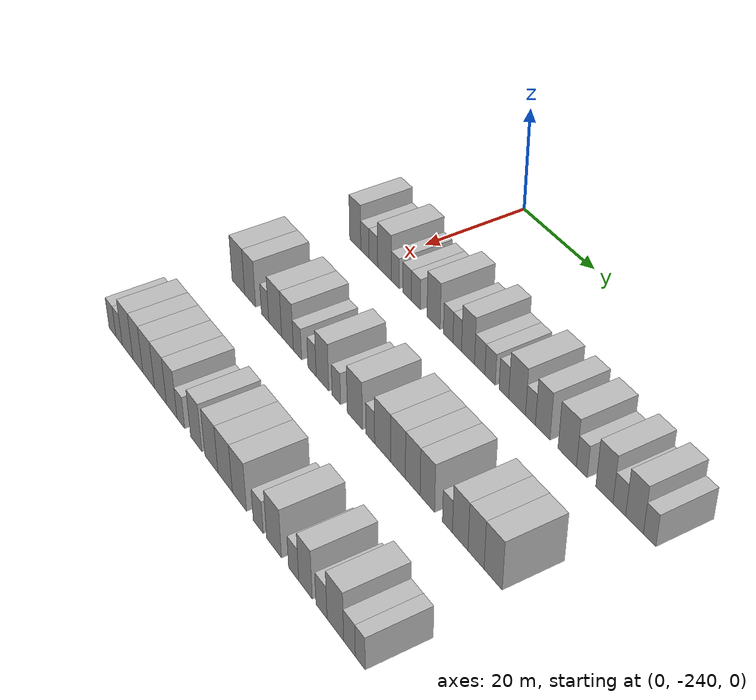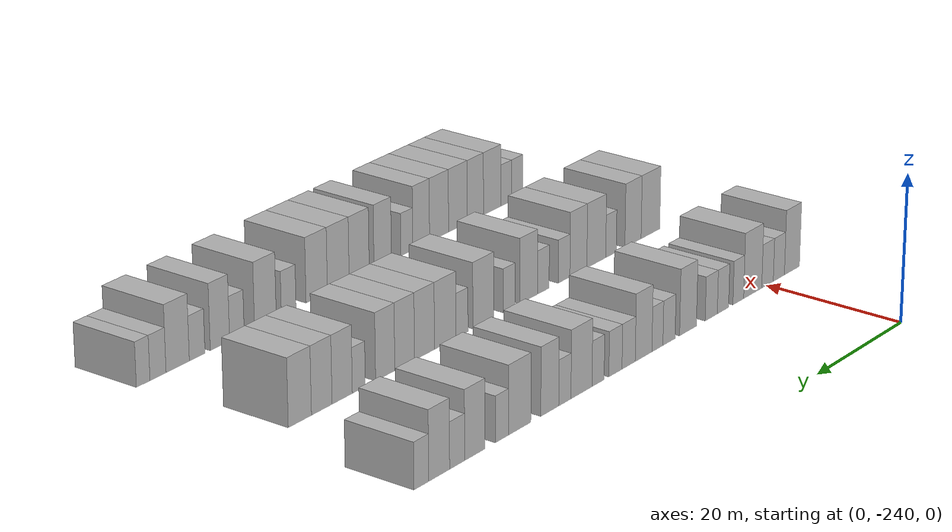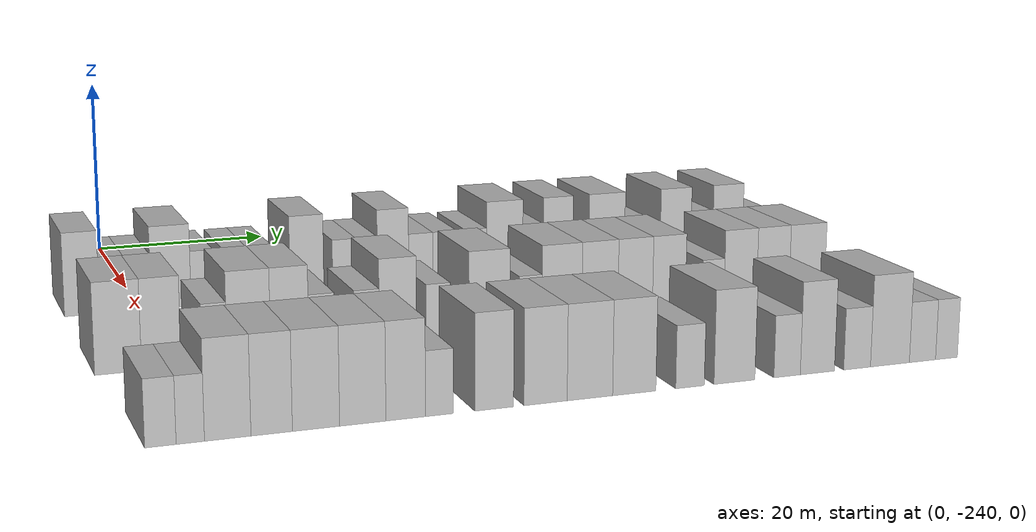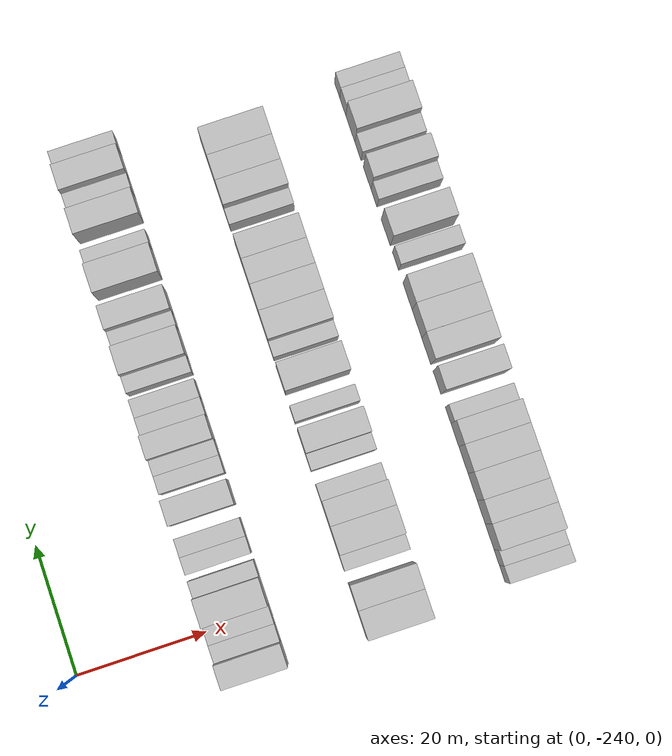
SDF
<sdf version="1.6">
 <world name="default">
  <model name="building_1">
   <static>1</static>
   <pose>25.0000 -246.1664 0 0.000000 0.000000 0.000000</pose>
   <link name="link">
    <pose>0 0 4.50 0 0 0</pose>
    <collision name="collision"><geometry><box><size>10.0000 3.6671 9.0000</size></box></geometry></collision>
    <visual name="visual">
     <cast_shadows>0</cast_shadows>
     <geometry><box><size>10.0000 3.6671 9.0000</size></box></geometry>
     <material>
      <script>
       <uri>model://HANNAS_wall/materials/scripts</uri>
       <uri>model://HANNAS_wall/materials/textures</uri>
       <name>vrc/HANNAS_wall</name>
      </script>
     </material>
    </visual>
   </link>
  </model>
  <model name="building_2">
   <static>1</static>
   <pose>25.0000 -242.9882 0 0.000000 0.000000 0.000000</pose>
   <link name="link">
    <pose>0 0 3.00 0 0 0</pose>
    <collision name="collision"><geometry><box><size>10.0000 2.6893 6.0000</size></box></geometry></collision>
    <visual name="visual">
     <cast_shadows>0</cast_shadows>
     <geometry><box><size>10.0000 2.6893 6.0000</size></box></geometry>
     <material>
      <script>
       <uri>model://HANNAS_wall/materials/scripts</uri>
       <uri>model://HANNAS_wall/materials/textures</uri>
       <name>vrc/HANNAS_wall</name>
      </script>
     </material>
    </visual>
   </link>
  </model>
  <model name="building_3">
   <static>1</static>
   <pose>25.0000 -240.2597 0 0.000000 0.000000 0.000000</pose>
   <link name="link">
    <pose>0 0 3.00 0 0 0</pose>
    <collision name="collision"><geometry><box><size>10.0000 2.7678 6.0000</size></box></geometry></collision>
    <visual name="visual">
     <cast_shadows>0</cast_shadows>
     <geometry><box><size>10.0000 2.7678 6.0000</size></box></geometry>
     <material>
      <script>
       <uri>model://HANNAS_wall/materials/scripts</uri>
       <uri>model://HANNAS_wall/materials/textures</uri>
       <name>vrc/HANNAS_wall</name>
      </script>
     </material>
    </visual>
   </link>
  </model>
  <model name="building_4">
   <static>1</static>
   <pose>25.0000 -236.7311 0 0.000000 0.000000 0.000000</pose>
   <link name="link">
    <pose>0 0 4.50 0 0 0</pose>
    <collision name="collision"><geometry><box><size>10.0000 4.2893 9.0000</size></box></geometry></collision>
    <visual name="visual">
     <cast_shadows>0</cast_shadows>
     <geometry><box><size>10.0000 4.2893 9.0000</size></box></geometry>
     <material>
      <script>
       <uri>model://HANNAS_wall/materials/scripts</uri>
       <uri>model://HANNAS_wall/materials/textures</uri>
       <name>vrc/HANNAS_wall</name>
      </script>
     </material>
    </visual>
   </link>
  </model>
  <model name="building_5">
   <static>1</static>
   <pose>25.0000 -233.3277 0 0.000000 0.000000 0.000000</pose>
   <link name="link">
    <pose>0 0 3.00 0 0 0</pose>
    <collision name="collision"><geometry><box><size>10.0000 2.5174 6.0000</size></box></geometry></collision>
    <visual name="visual">
     <cast_shadows>0</cast_shadows>
     <geometry><box><size>10.0000 2.5174 6.0000</size></box></geometry>
     <material>
      <script>
       <uri>model://HANNAS_wall/materials/scripts</uri>
       <uri>model://HANNAS_wall/materials/textures</uri>
       <name>vrc/HANNAS_wall</name>
      </script>
     </material>
    </visual>
   </link>
  </model>
  <model name="building_6">
   <static>1</static>
   <pose>25.0000 -229.7580 0 0.000000 0.000000 0.000000</pose>
   <link name="link">
    <pose>0 0 3.00 0 0 0</pose>
    <collision name="collision"><geometry><box><size>10.0000 2.6220 6.0000</size></box></geometry></collision>
    <visual name="visual">
     <cast_shadows>0</cast_shadows>
     <geometry><box><size>10.0000 2.6220 6.0000</size></box></geometry>
     <material>
      <script>
       <uri>model://HANNAS_wall/materials/scripts</uri>
       <uri>model://HANNAS_wall/materials/textures</uri>
       <name>vrc/HANNAS_wall</name>
      </script>
     </material>
    </visual>
   </link>
  </model>
  <model name="building_7">
   <static>1</static>
   <pose>25.0000 -227.0605 0 0.000000 0.000000 0.000000</pose>
   <link name="link">
    <pose>0 0 3.00 0 0 0</pose>
    <collision name="collision"><geometry><box><size>10.0000 2.7730 6.0000</size></box></geometry></collision>
    <visual name="visual">
     <cast_shadows>0</cast_shadows>
     <geometry><box><size>10.0000 2.7730 6.0000</size></box></geometry>
     <material>
      <script>
       <uri>model://HANNAS_wall/materials/scripts</uri>
       <uri>model://HANNAS_wall/materials/textures</uri>
       <name>vrc/HANNAS_wall</name>
      </script>
     </material>
    </visual>
   </link>
  </model>
  <model name="building_8">
   <static>1</static>
   <pose>25.0000 -221.7715 0 0.000000 0.000000 0.000000</pose>
   <link name="link">
    <pose>0 0 4.50 0 0 0</pose>
    <collision name="collision"><geometry><box><size>10.0000 3.8051 9.0000</size></box></geometry></collision>
    <visual name="visual">
     <cast_shadows>0</cast_shadows>
     <geometry><box><size>10.0000 3.8051 9.0000</size></box></geometry>
     <material>
      <script>
       <uri>model://HANNAS_wall/materials/scripts</uri>
       <uri>model://HANNAS_wall/materials/textures</uri>
       <name>vrc/HANNAS_wall</name>
      </script>
     </material>
    </visual>
   </link>
  </model>
  <model name="building_9">
   <static>1</static>
   <pose>25.0000 -217.5139 0 0.000000 0.000000 0.000000</pose>
   <link name="link">
    <pose>0 0 3.00 0 0 0</pose>
    <collision name="collision"><geometry><box><size>10.0000 2.7103 6.0000</size></box></geometry></collision>
    <visual name="visual">
     <cast_shadows>0</cast_shadows>
     <geometry><box><size>10.0000 2.7103 6.0000</size></box></geometry>
     <material>
      <script>
       <uri>model://HANNAS_wall/materials/scripts</uri>
       <uri>model://HANNAS_wall/materials/textures</uri>
       <name>vrc/HANNAS_wall</name>
      </script>
     </material>
    </visual>
   </link>
  </model>
  <model name="building_10">
   <static>1</static>
   <pose>25.0000 -214.9467 0 0.000000 0.000000 0.000000</pose>
   <link name="link">
    <pose>0 0 3.00 0 0 0</pose>
    <collision name="collision"><geometry><box><size>10.0000 2.4241 6.0000</size></box></geometry></collision>
    <visual name="visual">
     <cast_shadows>0</cast_shadows>
     <geometry><box><size>10.0000 2.4241 6.0000</size></box></geometry>
     <material>
      <script>
       <uri>model://HANNAS_wall/materials/scripts</uri>
       <uri>model://HANNAS_wall/materials/textures</uri>
       <name>vrc/HANNAS_wall</name>
      </script>
     </material>
    </visual>
   </link>
  </model>
  <model name="building_11">
   <static>1</static>
   <pose>25.0000 -211.9175 0 0.000000 0.000000 0.000000</pose>
   <link name="link">
    <pose>0 0 4.50 0 0 0</pose>
    <collision name="collision"><geometry><box><size>10.0000 3.6342 9.0000</size></box></geometry></collision>
    <visual name="visual">
     <cast_shadows>0</cast_shadows>
     <geometry><box><size>10.0000 3.6342 9.0000</size></box></geometry>
     <material>
      <script>
       <uri>model://HANNAS_wall/materials/scripts</uri>
       <uri>model://HANNAS_wall/materials/textures</uri>
       <name>vrc/HANNAS_wall</name>
      </script>
     </material>
    </visual>
   </link>
  </model>
  <model name="building_12">
   <static>1</static>
   <pose>25.0000 -208.6762 0 0.000000 0.000000 0.000000</pose>
   <link name="link">
    <pose>0 0 3.00 0 0 0</pose>
    <collision name="collision"><geometry><box><size>10.0000 2.8484 6.0000</size></box></geometry></collision>
    <visual name="visual">
     <cast_shadows>0</cast_shadows>
     <geometry><box><size>10.0000 2.8484 6.0000</size></box></geometry>
     <material>
      <script>
       <uri>model://HANNAS_wall/materials/scripts</uri>
       <uri>model://HANNAS_wall/materials/textures</uri>
       <name>vrc/HANNAS_wall</name>
      </script>
     </material>
    </visual>
   </link>
  </model>
  <model name="building_13">
   <static>1</static>
   <pose>25.0000 -205.8485 0 0.000000 0.000000 0.000000</pose>
   <link name="link">
    <pose>0 0 3.00 0 0 0</pose>
    <collision name="collision"><geometry><box><size>10.0000 2.8069 6.0000</size></box></geometry></collision>
    <visual name="visual">
     <cast_shadows>0</cast_shadows>
     <geometry><box><size>10.0000 2.8069 6.0000</size></box></geometry>
     <material>
      <script>
       <uri>model://HANNAS_wall/materials/scripts</uri>
       <uri>model://HANNAS_wall/materials/textures</uri>
       <name>vrc/HANNAS_wall</name>
      </script>
     </material>
    </visual>
   </link>
  </model>
  <model name="building_14">
   <static>1</static>
   <pose>25.0000 -202.1674 0 0.000000 0.000000 0.000000</pose>
   <link name="link">
    <pose>0 0 3.00 0 0 0</pose>
    <collision name="collision"><geometry><box><size>10.0000 2.5554 6.0000</size></box></geometry></collision>
    <visual name="visual">
     <cast_shadows>0</cast_shadows>
     <geometry><box><size>10.0000 2.5554 6.0000</size></box></geometry>
     <material>
      <script>
       <uri>model://HANNAS_wall/materials/scripts</uri>
       <uri>model://HANNAS_wall/materials/textures</uri>
       <name>vrc/HANNAS_wall</name>
      </script>
     </material>
    </visual>
   </link>
  </model>
  <model name="building_15">
   <static>1</static>
   <pose>25.0000 -198.6950 0 0.000000 0.000000 0.000000</pose>
   <link name="link">
    <pose>0 0 4.50 0 0 0</pose>
    <collision name="collision"><geometry><box><size>10.0000 4.3893 9.0000</size></box></geometry></collision>
    <visual name="visual">
     <cast_shadows>0</cast_shadows>
     <geometry><box><size>10.0000 4.3893 9.0000</size></box></geometry>
     <material>
      <script>
       <uri>model://HANNAS_wall/materials/scripts</uri>
       <uri>model://HANNAS_wall/materials/textures</uri>
       <name>vrc/HANNAS_wall</name>
      </script>
     </material>
    </visual>
   </link>
  </model>
  <model name="building_16">
   <static>1</static>
   <pose>25.0000 -195.2446 0 0.000000 0.000000 0.000000</pose>
   <link name="link">
    <pose>0 0 3.00 0 0 0</pose>
    <collision name="collision"><geometry><box><size>10.0000 2.5115 6.0000</size></box></geometry></collision>
    <visual name="visual">
     <cast_shadows>0</cast_shadows>
     <geometry><box><size>10.0000 2.5115 6.0000</size></box></geometry>
     <material>
      <script>
       <uri>model://HANNAS_wall/materials/scripts</uri>
       <uri>model://HANNAS_wall/materials/textures</uri>
       <name>vrc/HANNAS_wall</name>
      </script>
     </material>
    </visual>
   </link>
  </model>
  <model name="building_17">
   <static>1</static>
   <pose>25.0000 -192.1636 0 0.000000 0.000000 0.000000</pose>
   <link name="link">
    <pose>0 0 4.50 0 0 0</pose>
    <collision name="collision"><geometry><box><size>10.0000 3.6505 9.0000</size></box></geometry></collision>
    <visual name="visual">
     <cast_shadows>0</cast_shadows>
     <geometry><box><size>10.0000 3.6505 9.0000</size></box></geometry>
     <material>
      <script>
       <uri>model://HANNAS_wall/materials/scripts</uri>
       <uri>model://HANNAS_wall/materials/textures</uri>
       <name>vrc/HANNAS_wall</name>
      </script>
     </material>
    </visual>
   </link>
  </model>
  <model name="building_18">
   <static>1</static>
   <pose>25.0000 -186.1081 0 0.000000 0.000000 0.000000</pose>
   <link name="link">
    <pose>0 0 4.50 0 0 0</pose>
    <collision name="collision"><geometry><box><size>10.0000 4.4604 9.0000</size></box></geometry></collision>
    <visual name="visual">
     <cast_shadows>0</cast_shadows>
     <geometry><box><size>10.0000 4.4604 9.0000</size></box></geometry>
     <material>
      <script>
       <uri>model://HANNAS_wall/materials/scripts</uri>
       <uri>model://HANNAS_wall/materials/textures</uri>
       <name>vrc/HANNAS_wall</name>
      </script>
     </material>
    </visual>
   </link>
  </model>
  <model name="building_19">
   <static>1</static>
   <pose>25.0000 -182.5922 0 0.000000 0.000000 0.000000</pose>
   <link name="link">
    <pose>0 0 3.00 0 0 0</pose>
    <collision name="collision"><geometry><box><size>10.0000 2.5716 6.0000</size></box></geometry></collision>
    <visual name="visual">
     <cast_shadows>0</cast_shadows>
     <geometry><box><size>10.0000 2.5716 6.0000</size></box></geometry>
     <material>
      <script>
       <uri>model://HANNAS_wall/materials/scripts</uri>
       <uri>model://HANNAS_wall/materials/textures</uri>
       <name>vrc/HANNAS_wall</name>
      </script>
     </material>
    </visual>
   </link>
  </model>
  <model name="building_20">
   <static>1</static>
   <pose>25.0000 -177.3337 0 0.000000 0.000000 0.000000</pose>
   <link name="link">
    <pose>0 0 4.50 0 0 0</pose>
    <collision name="collision"><geometry><box><size>10.0000 3.9453 9.0000</size></box></geometry></collision>
    <visual name="visual">
     <cast_shadows>0</cast_shadows>
     <geometry><box><size>10.0000 3.9453 9.0000</size></box></geometry>
     <material>
      <script>
       <uri>model://HANNAS_wall/materials/scripts</uri>
       <uri>model://HANNAS_wall/materials/textures</uri>
       <name>vrc/HANNAS_wall</name>
      </script>
     </material>
    </visual>
   </link>
  </model>
  <model name="building_21">
   <static>1</static>
   <pose>25.0000 -173.9365 0 0.000000 0.000000 0.000000</pose>
   <link name="link">
    <pose>0 0 3.00 0 0 0</pose>
    <collision name="collision"><geometry><box><size>10.0000 2.8492 6.0000</size></box></geometry></collision>
    <visual name="visual">
     <cast_shadows>0</cast_shadows>
     <geometry><box><size>10.0000 2.8492 6.0000</size></box></geometry>
     <material>
      <script>
       <uri>model://HANNAS_wall/materials/scripts</uri>
       <uri>model://HANNAS_wall/materials/textures</uri>
       <name>vrc/HANNAS_wall</name>
      </script>
     </material>
    </visual>
   </link>
  </model>
  <model name="building_22">
   <static>1</static>
   <pose>25.0000 -170.5430 0 0.000000 0.000000 0.000000</pose>
   <link name="link">
    <pose>0 0 4.50 0 0 0</pose>
    <collision name="collision"><geometry><box><size>10.0000 3.9377 9.0000</size></box></geometry></collision>
    <visual name="visual">
     <cast_shadows>0</cast_shadows>
     <geometry><box><size>10.0000 3.9377 9.0000</size></box></geometry>
     <material>
      <script>
       <uri>model://HANNAS_wall/materials/scripts</uri>
       <uri>model://HANNAS_wall/materials/textures</uri>
       <name>vrc/HANNAS_wall</name>
      </script>
     </material>
    </visual>
   </link>
  </model>
  <model name="building_23">
   <static>1</static>
   <pose>25.0000 -167.2108 0 0.000000 0.000000 0.000000</pose>
   <link name="link">
    <pose>0 0 3.00 0 0 0</pose>
    <collision name="collision"><geometry><box><size>10.0000 2.7267 6.0000</size></box></geometry></collision>
    <visual name="visual">
     <cast_shadows>0</cast_shadows>
     <geometry><box><size>10.0000 2.7267 6.0000</size></box></geometry>
     <material>
      <script>
       <uri>model://HANNAS_wall/materials/scripts</uri>
       <uri>model://HANNAS_wall/materials/textures</uri>
       <name>vrc/HANNAS_wall</name>
      </script>
     </material>
    </visual>
   </link>
  </model>
  <model name="building_130">
   <static>1</static>
   <pose>47.0000 -245.7885 0 0.000000 0.000000 0.000000</pose>
   <link name="link">
    <pose>0 0 4.50 0 0 0</pose>
    <collision name="collision"><geometry><box><size>10.0000 4.4230 9.0000</size></box></geometry></collision>
    <visual name="visual">
     <cast_shadows>0</cast_shadows>
     <geometry><box><size>10.0000 4.4230 9.0000</size></box></geometry>
     <material>
      <script>
       <uri>model://HANNAS_wall/materials/scripts</uri>
       <uri>model://HANNAS_wall/materials/textures</uri>
       <name>vrc/HANNAS_wall</name>
      </script>
     </material>
    </visual>
   </link>
  </model>
  <model name="building_131">
   <static>1</static>
   <pose>47.0000 -241.6790 0 0.000000 0.000000 0.000000</pose>
   <link name="link">
    <pose>0 0 4.50 0 0 0</pose>
    <collision name="collision"><geometry><box><size>10.0000 3.7961 9.0000</size></box></geometry></collision>
    <visual name="visual">
     <cast_shadows>0</cast_shadows>
     <geometry><box><size>10.0000 3.7961 9.0000</size></box></geometry>
     <material>
      <script>
       <uri>model://HANNAS_wall/materials/scripts</uri>
       <uri>model://HANNAS_wall/materials/textures</uri>
       <name>vrc/HANNAS_wall</name>
      </script>
     </material>
    </visual>
   </link>
  </model>
  <model name="building_132">
   <static>1</static>
   <pose>47.0000 -236.5610 0 0.000000 0.000000 0.000000</pose>
   <link name="link">
    <pose>0 0 3.00 0 0 0</pose>
    <collision name="collision"><geometry><box><size>10.0000 2.4399 6.0000</size></box></geometry></collision>
    <visual name="visual">
     <cast_shadows>0</cast_shadows>
     <geometry><box><size>10.0000 2.4399 6.0000</size></box></geometry>
     <material>
      <script>
       <uri>model://HANNAS_wall/materials/scripts</uri>
       <uri>model://HANNAS_wall/materials/textures</uri>
       <name>vrc/HANNAS_wall</name>
      </script>
     </material>
    </visual>
   </link>
  </model>
  <model name="building_133">
   <static>1</static>
   <pose>47.0000 -233.1926 0 0.000000 0.000000 0.000000</pose>
   <link name="link">
    <pose>0 0 4.50 0 0 0</pose>
    <collision name="collision"><geometry><box><size>10.0000 4.2967 9.0000</size></box></geometry></collision>
    <visual name="visual">
     <cast_shadows>0</cast_shadows>
     <geometry><box><size>10.0000 4.2967 9.0000</size></box></geometry>
     <material>
      <script>
       <uri>model://HANNAS_wall/materials/scripts</uri>
       <uri>model://HANNAS_wall/materials/textures</uri>
       <name>vrc/HANNAS_wall</name>
      </script>
     </material>
    </visual>
   </link>
  </model>
  <model name="building_134">
   <static>1</static>
   <pose>47.0000 -229.1364 0 0.000000 0.000000 0.000000</pose>
   <link name="link">
    <pose>0 0 4.50 0 0 0</pose>
    <collision name="collision"><geometry><box><size>10.0000 3.8157 9.0000</size></box></geometry></collision>
    <visual name="visual">
     <cast_shadows>0</cast_shadows>
     <geometry><box><size>10.0000 3.8157 9.0000</size></box></geometry>
     <material>
      <script>
       <uri>model://HANNAS_wall/materials/scripts</uri>
       <uri>model://HANNAS_wall/materials/textures</uri>
       <name>vrc/HANNAS_wall</name>
      </script>
     </material>
    </visual>
   </link>
  </model>
  <model name="building_135">
   <static>1</static>
   <pose>47.0000 -225.9161 0 0.000000 0.000000 0.000000</pose>
   <link name="link">
    <pose>0 0 3.00 0 0 0</pose>
    <collision name="collision"><geometry><box><size>10.0000 2.6249 6.0000</size></box></geometry></collision>
    <visual name="visual">
     <cast_shadows>0</cast_shadows>
     <geometry><box><size>10.0000 2.6249 6.0000</size></box></geometry>
     <material>
      <script>
       <uri>model://HANNAS_wall/materials/scripts</uri>
       <uri>model://HANNAS_wall/materials/textures</uri>
       <name>vrc/HANNAS_wall</name>
      </script>
     </material>
    </visual>
   </link>
  </model>
  <model name="building_136">
   <static>1</static>
   <pose>47.0000 -221.3229 0 0.000000 0.000000 0.000000</pose>
   <link name="link">
    <pose>0 0 3.00 0 0 0</pose>
    <collision name="collision"><geometry><box><size>10.0000 2.5615 6.0000</size></box></geometry></collision>
    <visual name="visual">
     <cast_shadows>0</cast_shadows>
     <geometry><box><size>10.0000 2.5615 6.0000</size></box></geometry>
     <material>
      <script>
       <uri>model://HANNAS_wall/materials/scripts</uri>
       <uri>model://HANNAS_wall/materials/textures</uri>
       <name>vrc/HANNAS_wall</name>
      </script>
     </material>
    </visual>
   </link>
  </model>
  <model name="building_137">
   <static>1</static>
   <pose>47.0000 -218.1105 0 0.000000 0.000000 0.000000</pose>
   <link name="link">
    <pose>0 0 4.50 0 0 0</pose>
    <collision name="collision"><geometry><box><size>10.0000 3.8633 9.0000</size></box></geometry></collision>
    <visual name="visual">
     <cast_shadows>0</cast_shadows>
     <geometry><box><size>10.0000 3.8633 9.0000</size></box></geometry>
     <material>
      <script>
       <uri>model://HANNAS_wall/materials/scripts</uri>
       <uri>model://HANNAS_wall/materials/textures</uri>
       <name>vrc/HANNAS_wall</name>
      </script>
     </material>
    </visual>
   </link>
  </model>
  <model name="building_138">
   <static>1</static>
   <pose>47.0000 -213.9073 0 0.000000 0.000000 0.000000</pose>
   <link name="link">
    <pose>0 0 3.00 0 0 0</pose>
    <collision name="collision"><geometry><box><size>10.0000 2.5431 6.0000</size></box></geometry></collision>
    <visual name="visual">
     <cast_shadows>0</cast_shadows>
     <geometry><box><size>10.0000 2.5431 6.0000</size></box></geometry>
     <material>
      <script>
       <uri>model://HANNAS_wall/materials/scripts</uri>
       <uri>model://HANNAS_wall/materials/textures</uri>
       <name>vrc/HANNAS_wall</name>
      </script>
     </material>
    </visual>
   </link>
  </model>
  <model name="building_139">
   <static>1</static>
   <pose>47.0000 -208.4440 0 0.000000 0.000000 0.000000</pose>
   <link name="link">
    <pose>0 0 4.50 0 0 0</pose>
    <collision name="collision"><geometry><box><size>10.0000 4.3835 9.0000</size></box></geometry></collision>
    <visual name="visual">
     <cast_shadows>0</cast_shadows>
     <geometry><box><size>10.0000 4.3835 9.0000</size></box></geometry>
     <material>
      <script>
       <uri>model://HANNAS_wall/materials/scripts</uri>
       <uri>model://HANNAS_wall/materials/textures</uri>
       <name>vrc/HANNAS_wall</name>
      </script>
     </material>
    </visual>
   </link>
  </model>
  <model name="building_140">
   <static>1</static>
   <pose>47.0000 -204.0079 0 0.000000 0.000000 0.000000</pose>
   <link name="link">
    <pose>0 0 3.00 0 0 0</pose>
    <collision name="collision"><geometry><box><size>10.0000 2.4886 6.0000</size></box></geometry></collision>
    <visual name="visual">
     <cast_shadows>0</cast_shadows>
     <geometry><box><size>10.0000 2.4886 6.0000</size></box></geometry>
     <material>
      <script>
       <uri>model://HANNAS_wall/materials/scripts</uri>
       <uri>model://HANNAS_wall/materials/textures</uri>
       <name>vrc/HANNAS_wall</name>
      </script>
     </material>
    </visual>
   </link>
  </model>
  <model name="building_141">
   <static>1</static>
   <pose>47.0000 -200.5642 0 0.000000 0.000000 0.000000</pose>
   <link name="link">
    <pose>0 0 4.50 0 0 0</pose>
    <collision name="collision"><geometry><box><size>10.0000 4.3988 9.0000</size></box></geometry></collision>
    <visual name="visual">
     <cast_shadows>0</cast_shadows>
     <geometry><box><size>10.0000 4.3988 9.0000</size></box></geometry>
     <material>
      <script>
       <uri>model://HANNAS_wall/materials/scripts</uri>
       <uri>model://HANNAS_wall/materials/textures</uri>
       <name>vrc/HANNAS_wall</name>
      </script>
     </material>
    </visual>
   </link>
  </model>
  <model name="building_142">
   <static>1</static>
   <pose>47.0000 -196.3480 0 0.000000 0.000000 0.000000</pose>
   <link name="link">
    <pose>0 0 4.50 0 0 0</pose>
    <collision name="collision"><geometry><box><size>10.0000 4.0336 9.0000</size></box></geometry></collision>
    <visual name="visual">
     <cast_shadows>0</cast_shadows>
     <geometry><box><size>10.0000 4.0336 9.0000</size></box></geometry>
     <material>
      <script>
       <uri>model://HANNAS_wall/materials/scripts</uri>
       <uri>model://HANNAS_wall/materials/textures</uri>
       <name>vrc/HANNAS_wall</name>
      </script>
     </material>
    </visual>
   </link>
  </model>
  <model name="building_143">
   <static>1</static>
   <pose>47.0000 -192.3733 0 0.000000 0.000000 0.000000</pose>
   <link name="link">
    <pose>0 0 4.50 0 0 0</pose>
    <collision name="collision"><geometry><box><size>10.0000 3.9157 9.0000</size></box></geometry></collision>
    <visual name="visual">
     <cast_shadows>0</cast_shadows>
     <geometry><box><size>10.0000 3.9157 9.0000</size></box></geometry>
     <material>
      <script>
       <uri>model://HANNAS_wall/materials/scripts</uri>
       <uri>model://HANNAS_wall/materials/textures</uri>
       <name>vrc/HANNAS_wall</name>
      </script>
     </material>
    </visual>
   </link>
  </model>
  <model name="building_144">
   <static>1</static>
   <pose>47.0000 -188.5301 0 0.000000 0.000000 0.000000</pose>
   <link name="link">
    <pose>0 0 4.50 0 0 0</pose>
    <collision name="collision"><geometry><box><size>10.0000 3.7708 9.0000</size></box></geometry></collision>
    <visual name="visual">
     <cast_shadows>0</cast_shadows>
     <geometry><box><size>10.0000 3.7708 9.0000</size></box></geometry>
     <material>
      <script>
       <uri>model://HANNAS_wall/materials/scripts</uri>
       <uri>model://HANNAS_wall/materials/textures</uri>
       <name>vrc/HANNAS_wall</name>
      </script>
     </material>
    </visual>
   </link>
  </model>
  <model name="building_145">
   <static>1</static>
   <pose>47.0000 -183.3942 0 0.000000 0.000000 0.000000</pose>
   <link name="link">
    <pose>0 0 3.00 0 0 0</pose>
    <collision name="collision"><geometry><box><size>10.0000 2.5010 6.0000</size></box></geometry></collision>
    <visual name="visual">
     <cast_shadows>0</cast_shadows>
     <geometry><box><size>10.0000 2.5010 6.0000</size></box></geometry>
     <material>
      <script>
       <uri>model://HANNAS_wall/materials/scripts</uri>
       <uri>model://HANNAS_wall/materials/textures</uri>
       <name>vrc/HANNAS_wall</name>
      </script>
     </material>
    </visual>
   </link>
  </model>
  <model name="building_146">
   <static>1</static>
   <pose>47.0000 -180.2163 0 0.000000 0.000000 0.000000</pose>
   <link name="link">
    <pose>0 0 4.50 0 0 0</pose>
    <collision name="collision"><geometry><box><size>10.0000 3.8549 9.0000</size></box></geometry></collision>
    <visual name="visual">
     <cast_shadows>0</cast_shadows>
     <geometry><box><size>10.0000 3.8549 9.0000</size></box></geometry>
     <material>
      <script>
       <uri>model://HANNAS_wall/materials/scripts</uri>
       <uri>model://HANNAS_wall/materials/textures</uri>
       <name>vrc/HANNAS_wall</name>
      </script>
     </material>
    </visual>
   </link>
  </model>
  <model name="building_147">
   <static>1</static>
   <pose>47.0000 -176.3482 0 0.000000 0.000000 0.000000</pose>
   <link name="link">
    <pose>0 0 4.50 0 0 0</pose>
    <collision name="collision"><geometry><box><size>10.0000 3.8812 9.0000</size></box></geometry></collision>
    <visual name="visual">
     <cast_shadows>0</cast_shadows>
     <geometry><box><size>10.0000 3.8812 9.0000</size></box></geometry>
     <material>
      <script>
       <uri>model://HANNAS_wall/materials/scripts</uri>
       <uri>model://HANNAS_wall/materials/textures</uri>
       <name>vrc/HANNAS_wall</name>
      </script>
     </material>
    </visual>
   </link>
  </model>
  <model name="building_148">
   <static>1</static>
   <pose>47.0000 -172.2595 0 0.000000 0.000000 0.000000</pose>
   <link name="link">
    <pose>0 0 4.50 0 0 0</pose>
    <collision name="collision"><geometry><box><size>10.0000 4.2963 9.0000</size></box></geometry></collision>
    <visual name="visual">
     <cast_shadows>0</cast_shadows>
     <geometry><box><size>10.0000 4.2963 9.0000</size></box></geometry>
     <material>
      <script>
       <uri>model://HANNAS_wall/materials/scripts</uri>
       <uri>model://HANNAS_wall/materials/textures</uri>
       <name>vrc/HANNAS_wall</name>
      </script>
     </material>
    </visual>
   </link>
  </model>
  <model name="building_251">
   <static>1</static>
   <pose>69.0000 -245.6770 0 0.000000 0.000000 0.000000</pose>
   <link name="link">
    <pose>0 0 3.00 0 0 0</pose>
    <collision name="collision"><geometry><box><size>10.0000 2.6461 6.0000</size></box></geometry></collision>
    <visual name="visual">
     <cast_shadows>0</cast_shadows>
     <geometry><box><size>10.0000 2.6461 6.0000</size></box></geometry>
     <material>
      <script>
       <uri>model://HANNAS_wall/materials/scripts</uri>
       <uri>model://HANNAS_wall/materials/textures</uri>
       <name>vrc/HANNAS_wall</name>
      </script>
     </material>
    </visual>
   </link>
  </model>
  <model name="building_252">
   <static>1</static>
   <pose>69.0000 -243.1518 0 0.000000 0.000000 0.000000</pose>
   <link name="link">
    <pose>0 0 3.00 0 0 0</pose>
    <collision name="collision"><geometry><box><size>10.0000 2.4043 6.0000</size></box></geometry></collision>
    <visual name="visual">
     <cast_shadows>0</cast_shadows>
     <geometry><box><size>10.0000 2.4043 6.0000</size></box></geometry>
     <material>
      <script>
       <uri>model://HANNAS_wall/materials/scripts</uri>
       <uri>model://HANNAS_wall/materials/textures</uri>
       <name>vrc/HANNAS_wall</name>
      </script>
     </material>
    </visual>
   </link>
  </model>
  <model name="building_253">
   <static>1</static>
   <pose>69.0000 -239.9547 0 0.000000 0.000000 0.000000</pose>
   <link name="link">
    <pose>0 0 4.50 0 0 0</pose>
    <collision name="collision"><geometry><box><size>10.0000 3.9898 9.0000</size></box></geometry></collision>
    <visual name="visual">
     <cast_shadows>0</cast_shadows>
     <geometry><box><size>10.0000 3.9898 9.0000</size></box></geometry>
     <material>
      <script>
       <uri>model://HANNAS_wall/materials/scripts</uri>
       <uri>model://HANNAS_wall/materials/textures</uri>
       <name>vrc/HANNAS_wall</name>
      </script>
     </material>
    </visual>
   </link>
  </model>
  <model name="building_254">
   <static>1</static>
   <pose>69.0000 -236.1522 0 0.000000 0.000000 0.000000</pose>
   <link name="link">
    <pose>0 0 4.50 0 0 0</pose>
    <collision name="collision"><geometry><box><size>10.0000 3.6153 9.0000</size></box></geometry></collision>
    <visual name="visual">
     <cast_shadows>0</cast_shadows>
     <geometry><box><size>10.0000 3.6153 9.0000</size></box></geometry>
     <material>
      <script>
       <uri>model://HANNAS_wall/materials/scripts</uri>
       <uri>model://HANNAS_wall/materials/textures</uri>
       <name>vrc/HANNAS_wall</name>
      </script>
     </material>
    </visual>
   </link>
  </model>
  <model name="building_255">
   <static>1</static>
   <pose>69.0000 -232.2510 0 0.000000 0.000000 0.000000</pose>
   <link name="link">
    <pose>0 0 4.50 0 0 0</pose>
    <collision name="collision"><geometry><box><size>10.0000 4.1869 9.0000</size></box></geometry></collision>
    <visual name="visual">
     <cast_shadows>0</cast_shadows>
     <geometry><box><size>10.0000 4.1869 9.0000</size></box></geometry>
     <material>
      <script>
       <uri>model://HANNAS_wall/materials/scripts</uri>
       <uri>model://HANNAS_wall/materials/textures</uri>
       <name>vrc/HANNAS_wall</name>
      </script>
     </material>
    </visual>
   </link>
  </model>
  <model name="building_256">
   <static>1</static>
   <pose>69.0000 -228.0725 0 0.000000 0.000000 0.000000</pose>
   <link name="link">
    <pose>0 0 4.50 0 0 0</pose>
    <collision name="collision"><geometry><box><size>10.0000 4.1701 9.0000</size></box></geometry></collision>
    <visual name="visual">
     <cast_shadows>0</cast_shadows>
     <geometry><box><size>10.0000 4.1701 9.0000</size></box></geometry>
     <material>
      <script>
       <uri>model://HANNAS_wall/materials/scripts</uri>
       <uri>model://HANNAS_wall/materials/textures</uri>
       <name>vrc/HANNAS_wall</name>
      </script>
     </material>
    </visual>
   </link>
  </model>
  <model name="building_257">
   <static>1</static>
   <pose>69.0000 -224.1730 0 0.000000 0.000000 0.000000</pose>
   <link name="link">
    <pose>0 0 4.50 0 0 0</pose>
    <collision name="collision"><geometry><box><size>10.0000 3.6289 9.0000</size></box></geometry></collision>
    <visual name="visual">
     <cast_shadows>0</cast_shadows>
     <geometry><box><size>10.0000 3.6289 9.0000</size></box></geometry>
     <material>
      <script>
       <uri>model://HANNAS_wall/materials/scripts</uri>
       <uri>model://HANNAS_wall/materials/textures</uri>
       <name>vrc/HANNAS_wall</name>
      </script>
     </material>
    </visual>
   </link>
  </model>
  <model name="building_258">
   <static>1</static>
   <pose>69.0000 -221.0709 0 0.000000 0.000000 0.000000</pose>
   <link name="link">
    <pose>0 0 3.00 0 0 0</pose>
    <collision name="collision"><geometry><box><size>10.0000 2.5753 6.0000</size></box></geometry></collision>
    <visual name="visual">
     <cast_shadows>0</cast_shadows>
     <geometry><box><size>10.0000 2.5753 6.0000</size></box></geometry>
     <material>
      <script>
       <uri>model://HANNAS_wall/materials/scripts</uri>
       <uri>model://HANNAS_wall/materials/textures</uri>
       <name>vrc/HANNAS_wall</name>
      </script>
     </material>
    </visual>
   </link>
  </model>
  <model name="building_259">
   <static>1</static>
   <pose>69.0000 -215.9453 0 0.000000 0.000000 0.000000</pose>
   <link name="link">
    <pose>0 0 4.50 0 0 0</pose>
    <collision name="collision"><geometry><box><size>10.0000 3.6760 9.0000</size></box></geometry></collision>
    <visual name="visual">
     <cast_shadows>0</cast_shadows>
     <geometry><box><size>10.0000 3.6760 9.0000</size></box></geometry>
     <material>
      <script>
       <uri>model://HANNAS_wall/materials/scripts</uri>
       <uri>model://HANNAS_wall/materials/textures</uri>
       <name>vrc/HANNAS_wall</name>
      </script>
     </material>
    </visual>
   </link>
  </model>
  <model name="building_260">
   <static>1</static>
   <pose>69.0000 -211.0261 0 0.000000 0.000000 0.000000</pose>
   <link name="link">
    <pose>0 0 4.50 0 0 0</pose>
    <collision name="collision"><geometry><box><size>10.0000 4.1625 9.0000</size></box></geometry></collision>
    <visual name="visual">
     <cast_shadows>0</cast_shadows>
     <geometry><box><size>10.0000 4.1625 9.0000</size></box></geometry>
     <material>
      <script>
       <uri>model://HANNAS_wall/materials/scripts</uri>
       <uri>model://HANNAS_wall/materials/textures</uri>
       <name>vrc/HANNAS_wall</name>
      </script>
     </material>
    </visual>
   </link>
  </model>
  <model name="building_261">
   <static>1</static>
   <pose>69.0000 -206.7169 0 0.000000 0.000000 0.000000</pose>
   <link name="link">
    <pose>0 0 4.50 0 0 0</pose>
    <collision name="collision"><geometry><box><size>10.0000 4.4558 9.0000</size></box></geometry></collision>
    <visual name="visual">
     <cast_shadows>0</cast_shadows>
     <geometry><box><size>10.0000 4.4558 9.0000</size></box></geometry>
     <material>
      <script>
       <uri>model://HANNAS_wall/materials/scripts</uri>
       <uri>model://HANNAS_wall/materials/textures</uri>
       <name>vrc/HANNAS_wall</name>
      </script>
     </material>
    </visual>
   </link>
  </model>
  <model name="building_262">
   <static>1</static>
   <pose>69.0000 -202.3320 0 0.000000 0.000000 0.000000</pose>
   <link name="link">
    <pose>0 0 4.50 0 0 0</pose>
    <collision name="collision"><geometry><box><size>10.0000 4.3140 9.0000</size></box></geometry></collision>
    <visual name="visual">
     <cast_shadows>0</cast_shadows>
     <geometry><box><size>10.0000 4.3140 9.0000</size></box></geometry>
     <material>
      <script>
       <uri>model://HANNAS_wall/materials/scripts</uri>
       <uri>model://HANNAS_wall/materials/textures</uri>
       <name>vrc/HANNAS_wall</name>
      </script>
     </material>
    </visual>
   </link>
  </model>
  <model name="building_263">
   <static>1</static>
   <pose>69.0000 -196.7190 0 0.000000 0.000000 0.000000</pose>
   <link name="link">
    <pose>0 0 3.00 0 0 0</pose>
    <collision name="collision"><geometry><box><size>10.0000 2.9120 6.0000</size></box></geometry></collision>
    <visual name="visual">
     <cast_shadows>0</cast_shadows>
     <geometry><box><size>10.0000 2.9120 6.0000</size></box></geometry>
     <material>
      <script>
       <uri>model://HANNAS_wall/materials/scripts</uri>
       <uri>model://HANNAS_wall/materials/textures</uri>
       <name>vrc/HANNAS_wall</name>
      </script>
     </material>
    </visual>
   </link>
  </model>
  <model name="building_264">
   <static>1</static>
   <pose>69.0000 -192.1454 0 0.000000 0.000000 0.000000</pose>
   <link name="link">
    <pose>0 0 4.50 0 0 0</pose>
    <collision name="collision"><geometry><box><size>10.0000 4.2352 9.0000</size></box></geometry></collision>
    <visual name="visual">
     <cast_shadows>0</cast_shadows>
     <geometry><box><size>10.0000 4.2352 9.0000</size></box></geometry>
     <material>
      <script>
       <uri>model://HANNAS_wall/materials/scripts</uri>
       <uri>model://HANNAS_wall/materials/textures</uri>
       <name>vrc/HANNAS_wall</name>
      </script>
     </material>
    </visual>
   </link>
  </model>
  <model name="building_265">
   <static>1</static>
   <pose>69.0000 -186.6327 0 0.000000 0.000000 0.000000</pose>
   <link name="link">
    <pose>0 0 3.00 0 0 0</pose>
    <collision name="collision"><geometry><box><size>10.0000 2.7902 6.0000</size></box></geometry></collision>
    <visual name="visual">
     <cast_shadows>0</cast_shadows>
     <geometry><box><size>10.0000 2.7902 6.0000</size></box></geometry>
     <material>
      <script>
       <uri>model://HANNAS_wall/materials/scripts</uri>
       <uri>model://HANNAS_wall/materials/textures</uri>
       <name>vrc/HANNAS_wall</name>
      </script>
     </material>
    </visual>
   </link>
  </model>
  <model name="building_266">
   <static>1</static>
   <pose>69.0000 -183.4067 0 0.000000 0.000000 0.000000</pose>
   <link name="link">
    <pose>0 0 4.50 0 0 0</pose>
    <collision name="collision"><geometry><box><size>10.0000 3.6618 9.0000</size></box></geometry></collision>
    <visual name="visual">
     <cast_shadows>0</cast_shadows>
     <geometry><box><size>10.0000 3.6618 9.0000</size></box></geometry>
     <material>
      <script>
       <uri>model://HANNAS_wall/materials/scripts</uri>
       <uri>model://HANNAS_wall/materials/textures</uri>
       <name>vrc/HANNAS_wall</name>
      </script>
     </material>
    </visual>
   </link>
  </model>
  <model name="building_267">
   <static>1</static>
   <pose>69.0000 -179.1189 0 0.000000 0.000000 0.000000</pose>
   <link name="link">
    <pose>0 0 3.00 0 0 0</pose>
    <collision name="collision"><geometry><box><size>10.0000 2.9137 6.0000</size></box></geometry></collision>
    <visual name="visual">
     <cast_shadows>0</cast_shadows>
     <geometry><box><size>10.0000 2.9137 6.0000</size></box></geometry>
     <material>
      <script>
       <uri>model://HANNAS_wall/materials/scripts</uri>
       <uri>model://HANNAS_wall/materials/textures</uri>
       <name>vrc/HANNAS_wall</name>
      </script>
     </material>
    </visual>
   </link>
  </model>
  <model name="building_268">
   <static>1</static>
   <pose>69.0000 -175.5165 0 0.000000 0.000000 0.000000</pose>
   <link name="link">
    <pose>0 0 4.50 0 0 0</pose>
    <collision name="collision"><geometry><box><size>10.0000 4.2912 9.0000</size></box></geometry></collision>
    <visual name="visual">
     <cast_shadows>0</cast_shadows>
     <geometry><box><size>10.0000 4.2912 9.0000</size></box></geometry>
     <material>
      <script>
       <uri>model://HANNAS_wall/materials/scripts</uri>
       <uri>model://HANNAS_wall/materials/textures</uri>
       <name>vrc/HANNAS_wall</name>
      </script>
     </material>
    </visual>
   </link>
  </model>
  <model name="building_269">
   <static>1</static>
   <pose>69.0000 -171.9085 0 0.000000 0.000000 0.000000</pose>
   <link name="link">
    <pose>0 0 3.00 0 0 0</pose>
    <collision name="collision"><geometry><box><size>10.0000 2.9249 6.0000</size></box></geometry></collision>
    <visual name="visual">
     <cast_shadows>0</cast_shadows>
     <geometry><box><size>10.0000 2.9249 6.0000</size></box></geometry>
     <material>
      <script>
       <uri>model://HANNAS_wall/materials/scripts</uri>
       <uri>model://HANNAS_wall/materials/textures</uri>
       <name>vrc/HANNAS_wall</name>
      </script>
     </material>
    </visual>
   </link>
  </model>
  <model name="building_270">
   <static>1</static>
   <pose>69.0000 -169.2185 0 0.000000 0.000000 0.000000</pose>
   <link name="link">
    <pose>0 0 3.00 0 0 0</pose>
    <collision name="collision"><geometry><box><size>10.0000 2.4550 6.0000</size></box></geometry></collision>
    <visual name="visual">
     <cast_shadows>0</cast_shadows>
     <geometry><box><size>10.0000 2.4550 6.0000</size></box></geometry>
     <material>
      <script>
       <uri>model://HANNAS_wall/materials/scripts</uri>
       <uri>model://HANNAS_wall/materials/textures</uri>
       <name>vrc/HANNAS_wall</name>
      </script>
     </material>
    </visual>
   </link>
  </model>
 </world>
</sdf>
